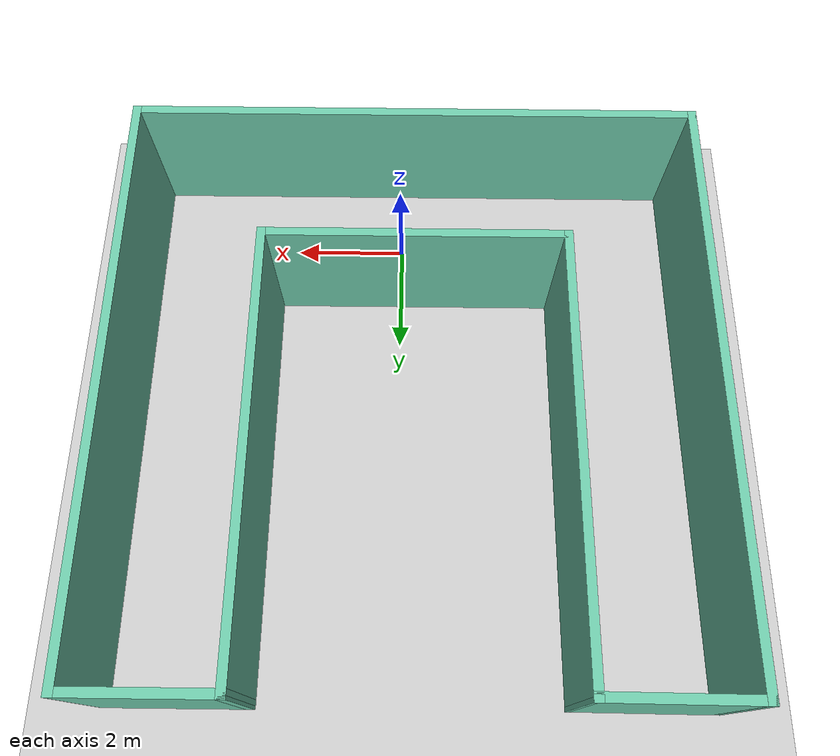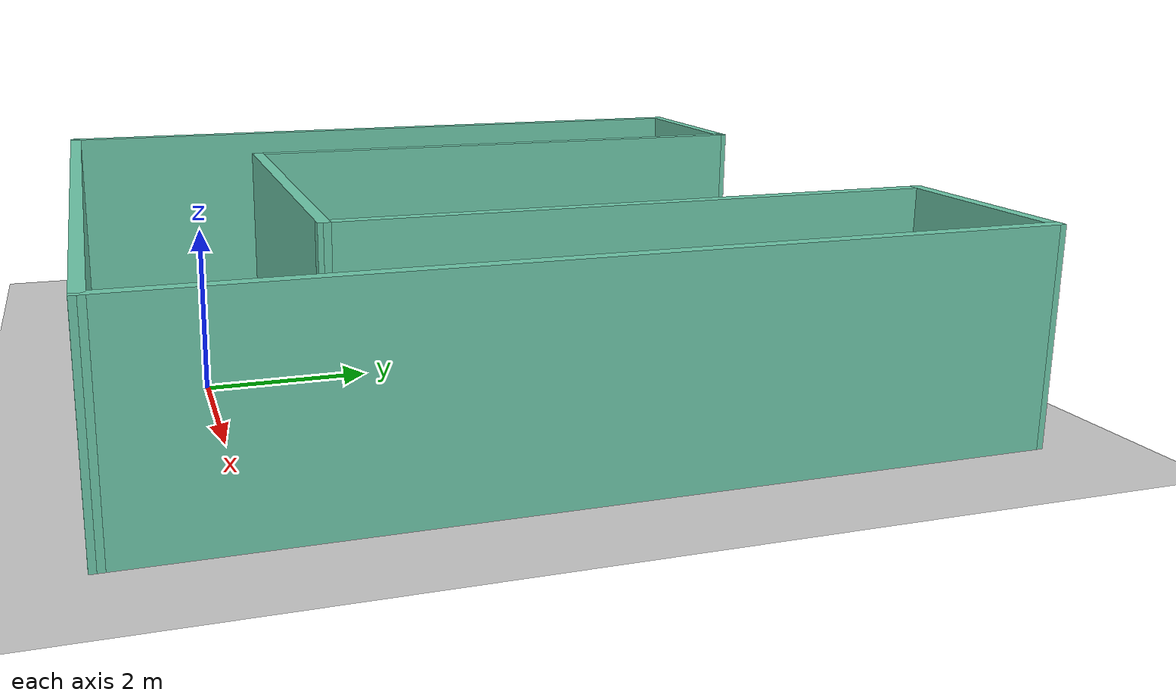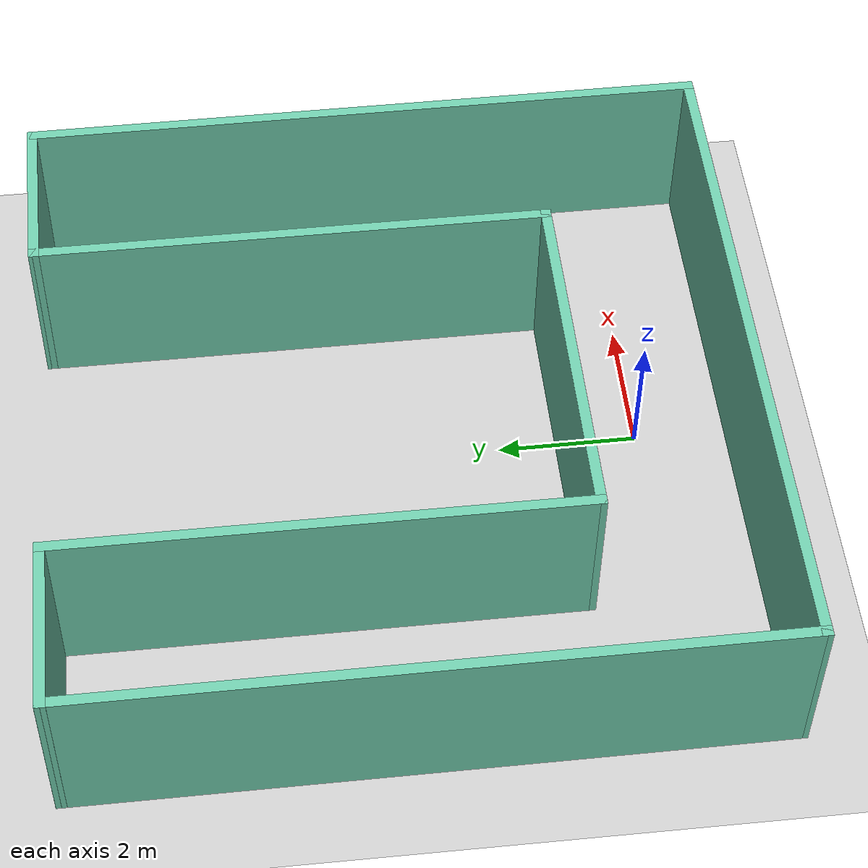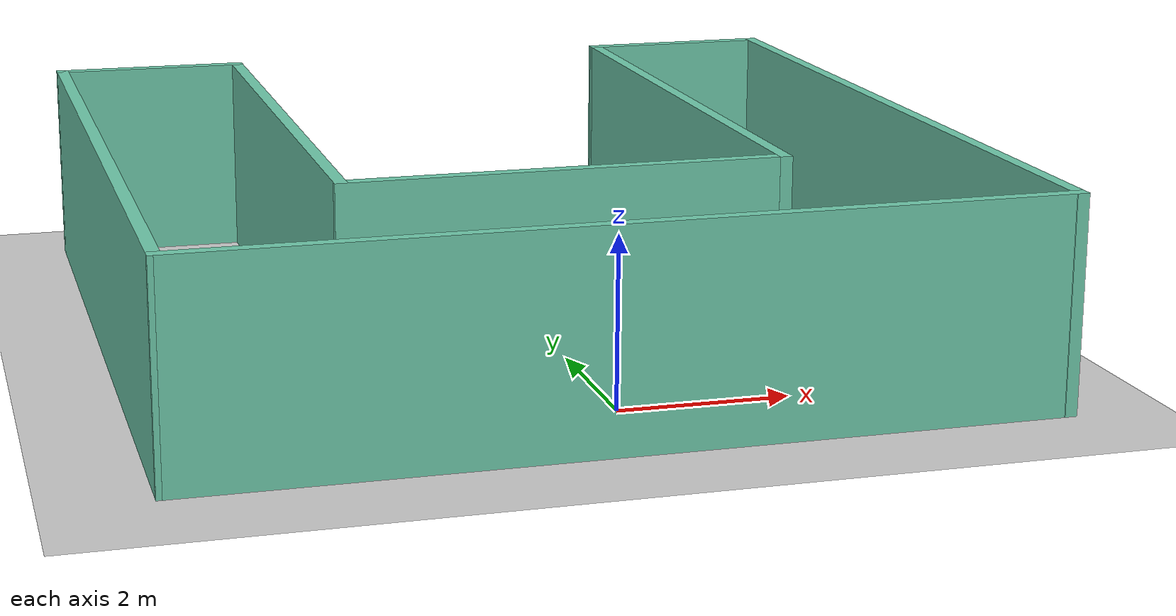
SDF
<sdf version="1.6">
 <world name="default">
  <light name="sun" type="directional">
   <pose>0 0 15 0 -0 0</pose>
   <diffuse>0.8 0.8 0.8 1</diffuse>
   <specular>0.2 0.2 0.2 1</specular>
   <attenuation>
    <range>1000</range>
    <constant>0.9</constant>
    <linear>0.01</linear>
    <quadratic>0.001</quadratic>
   </attenuation>
   <direction>-0.5 0.1 -0.9</direction>
  </light>
  <model name="ground_plane">
   <static>1</static>
   <link name="link">
    <collision name="collision">
     <geometry><plane><normal>0 0 1</normal><size>100 100</size></plane></geometry>
     <surface><friction><ode><mu>100</mu><mu2>50</mu2></ode></friction></surface>
    </collision>
    <visual name="visual">
     <transparency>1</transparency>
     <cast_shadows>0</cast_shadows>
     <geometry><plane><normal>0 0 1</normal><size>100 100</size></plane></geometry>
     <material>
      <script><uri>file://media/materials/scripts/gazebo.material</uri><name>Gazebo/Grey</name></script>
     </material>
    </visual>
   </link>
  </model>
  <gravity>0 0 -9.8</gravity>
  <magnetic_field>6e-06 2.3e-05 -4.2e-05</magnetic_field>
  <atmosphere type="adiabatic"/>
  <physics name="default_physics" default="0" type="ode">
   <max_step_size>0.001</max_step_size>
   <real_time_factor>1</real_time_factor>
   <real_time_update_rate>1000</real_time_update_rate>
  </physics>
  <scene><ambient>0.4 0.4 0.4 1</ambient><background>0.7 0.7 0.7 1</background><shadows>1</shadows></scene>
  <audio><device>default</device></audio>
  <spherical_coordinates>
   <surface_model>EARTH_WGS84</surface_model>
   <latitude_deg>0</latitude_deg>
   <longitude_deg>0</longitude_deg>
   <elevation>0</elevation>
   <heading_deg>0</heading_deg>
  </spherical_coordinates>
  <model name="home">
   <pose>-0.240124 3.5238 0 0 -0 0</pose>
   <link name="Wall_10">
    <collision name="Wall_10_Collision">
     <geometry><box><size>10.0004 0.15 2.5</size></box></geometry>
     <pose>0 0 1.25 0 -0 0</pose>
    </collision>
    <visual name="Wall_10_Visual">
     <pose>0 0 1.25 0 -0 0</pose>
     <geometry><box><size>10.0004 0.15 2.5</size></box></geometry>
     <material>
      <script><uri>file://media/materials/scripts/gazebo.material</uri><name>Gazebo/Grey</name></script>
      <ambient>0.435294 0.796078 0.67451 1</ambient>
     </material>
     <meta><layer>0</layer></meta>
    </visual>
    <pose>4.91662 -0.001298 0 0 -0 -1.56562</pose>
   </link>
   <link name="Wall_2">
    <collision name="Wall_2_Collision">
     <geometry><box><size>10 0.15 2.5</size></box></geometry>
     <pose>0 0 1.25 0 -0 0</pose>
    </collision>
    <visual name="Wall_2_Visual">
     <pose>0 0 1.25 0 -0 0</pose>
     <geometry><box><size>10 0.15 2.5</size></box></geometry>
     <material>
      <script><uri>file://media/materials/scripts/gazebo.material</uri><name>Gazebo/Grey</name></script>
      <ambient>0.435294 0.796078 0.67451 1</ambient>
     </material>
     <meta><layer>0</layer></meta>
    </visual>
    <pose>0.017124 -4.9253 0 0 -0 3.14129</pose>
   </link>
   <link name="Wall_4">
    <collision name="Wall_4_Collision">
     <geometry><box><size>10 0.15 2.5</size></box></geometry>
     <pose>0 0 1.25 0 -0 0</pose>
    </collision>
    <visual name="Wall_4_Visual">
     <pose>0 0 1.25 0 -0 0</pose>
     <geometry><box><size>10 0.15 2.5</size></box></geometry>
     <material>
      <script><uri>file://media/materials/scripts/gazebo.material</uri><name>Gazebo/Grey</name></script>
      <ambient>0.435294 0.796078 0.67451 1</ambient>
     </material>
     <meta><layer>0</layer></meta>
    </visual>
    <pose>-4.92488 0.001202 0 0 -0 1.57425</pose>
   </link>
   <link name="Wall_5">
    <collision name="Wall_5_Collision">
     <geometry><box><size>2.5 0.15 2.5</size></box></geometry>
     <pose>0 0 1.25 0 -0 0</pose>
    </collision>
    <visual name="Wall_5_Visual">
     <pose>0 0 1.25 0 -0 0</pose>
     <geometry><box><size>2.5 0.15 2.5</size></box></geometry>
     <material>
      <script><uri>file://media/materials/scripts/gazebo.material</uri><name>Gazebo/Grey</name></script>
      <ambient>0.435294 0.796078 0.67451 1</ambient>
     </material>
     <meta><layer>0</layer></meta>
    </visual>
    <pose>-3.76692 4.91622 0 0 -0 -0.008492</pose>
   </link>
   <link name="Wall_6">
    <collision name="Wall_6_Collision">
     <geometry><box><size>7.47989 0.15 2.5</size></box></geometry>
     <pose>0 0 1.25 0 -0 0</pose>
    </collision>
    <visual name="Wall_6_Visual">
     <pose>0 0 1.25 0 -0 0</pose>
     <geometry><box><size>7.47989 0.15 2.5</size></box></geometry>
     <material>
      <script><uri>file://media/materials/scripts/gazebo.material</uri><name>Gazebo/Grey</name></script>
      <ambient>0.435294 0.796078 0.67451 1</ambient>
     </material>
     <meta><layer>0</layer></meta>
    </visual>
    <pose>-2.59092 1.24122 0 0 -0 -1.57051</pose>
   </link>
   <link name="Wall_7">
    <collision name="Wall_7_Collision">
     <geometry><box><size>5.289 0.15 2.5</size></box></geometry>
     <pose>0 0 1.25 0 -0 0</pose>
    </collision>
    <visual name="Wall_7_Visual">
     <pose>0 0 1.25 0 -0 0</pose>
     <geometry><box><size>5.289 0.15 2.5</size></box></geometry>
     <material>
      <script><uri>file://media/materials/scripts/gazebo.material</uri><name>Gazebo/Grey</name></script>
      <ambient>0.435294 0.796078 0.67451 1</ambient>
     </material>
     <meta><layer>0</layer></meta>
    </visual>
    <pose>-0.020376 -2.4238 0 0 -0 0</pose>
   </link>
   <link name="Wall_8">
    <collision name="Wall_8_Collision">
     <geometry><box><size>7.5 0.15 2.5</size></box></geometry>
     <pose>0 0 1.25 0 -0 0</pose>
    </collision>
    <visual name="Wall_8_Visual">
     <pose>0 0 1.25 0 -0 0</pose>
     <geometry><box><size>7.5 0.15 2.5</size></box></geometry>
     <material>
      <script><uri>file://media/materials/scripts/gazebo.material</uri><name>Gazebo/Grey</name></script>
      <ambient>0.435294 0.796078 0.67451 1</ambient>
     </material>
     <meta><layer>0</layer></meta>
    </visual>
    <pose>2.54513 1.2507 0 0 -0 1.57188</pose>
   </link>
   <link name="Wall_9">
    <collision name="Wall_9_Collision">
     <geometry><box><size>2.5 0.15 2.5</size></box></geometry>
     <pose>0 0 1.25 0 -0 0</pose>
    </collision>
    <visual name="Wall_9_Visual">
     <pose>0 0 1.25 0 -0 0</pose>
     <geometry><box><size>2.5 0.15 2.5</size></box></geometry>
     <material>
      <script><uri>file://media/materials/scripts/gazebo.material</uri><name>Gazebo/Grey</name></script>
      <ambient>0.435294 0.796078 0.67451 1</ambient>
     </material>
     <meta><layer>0</layer></meta>
    </visual>
    <pose>3.71612 4.9247 0 0 -0 -0.000426</pose>
   </link>
   <static>1</static>
  </model>
 </world>
</sdf>
